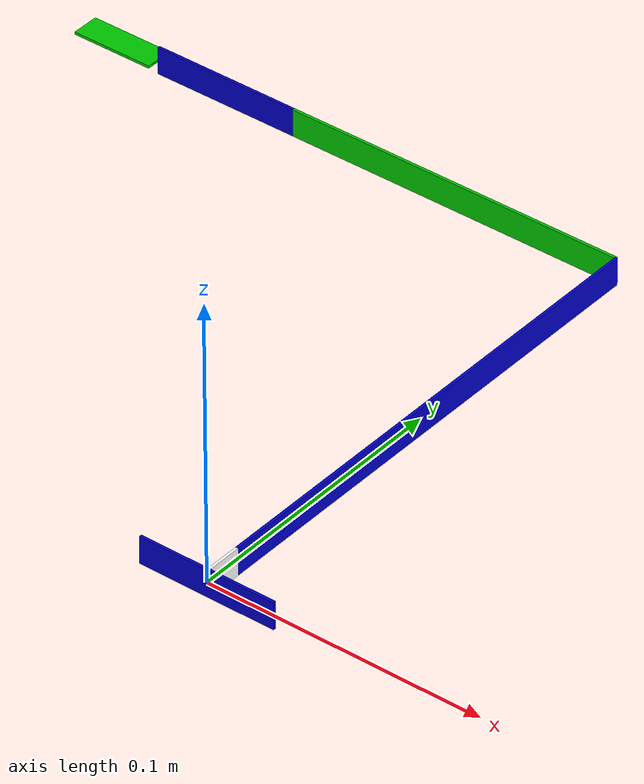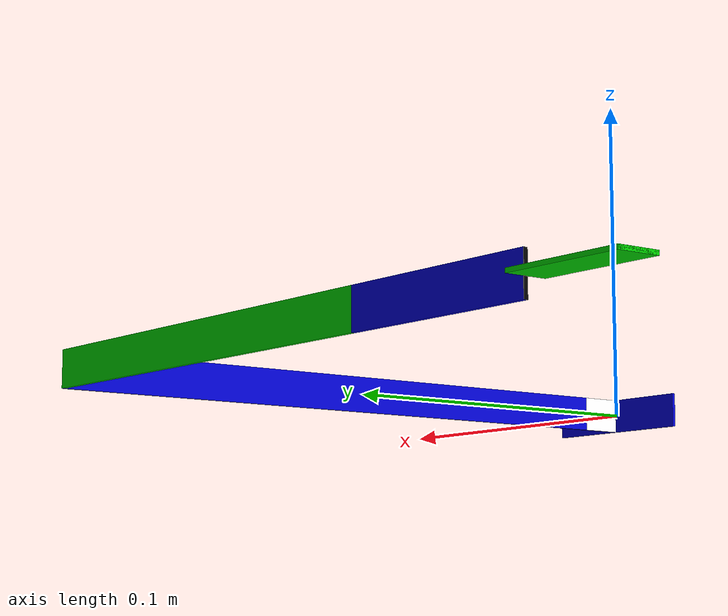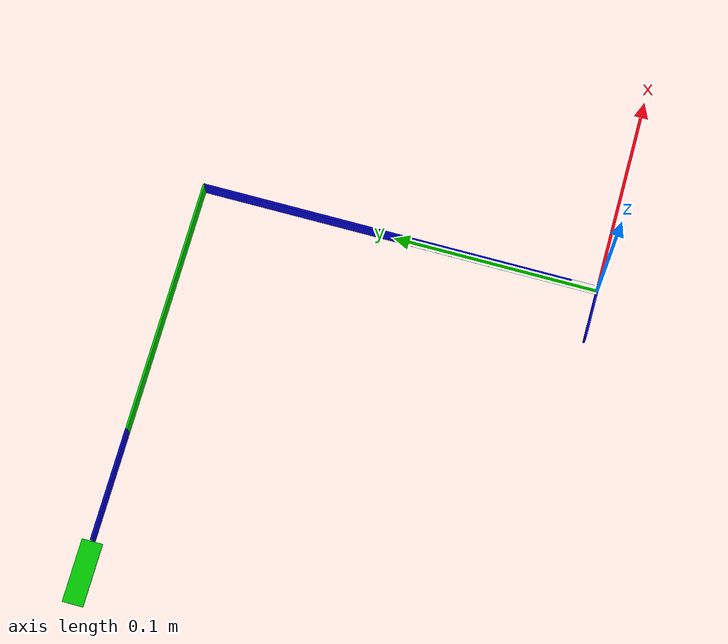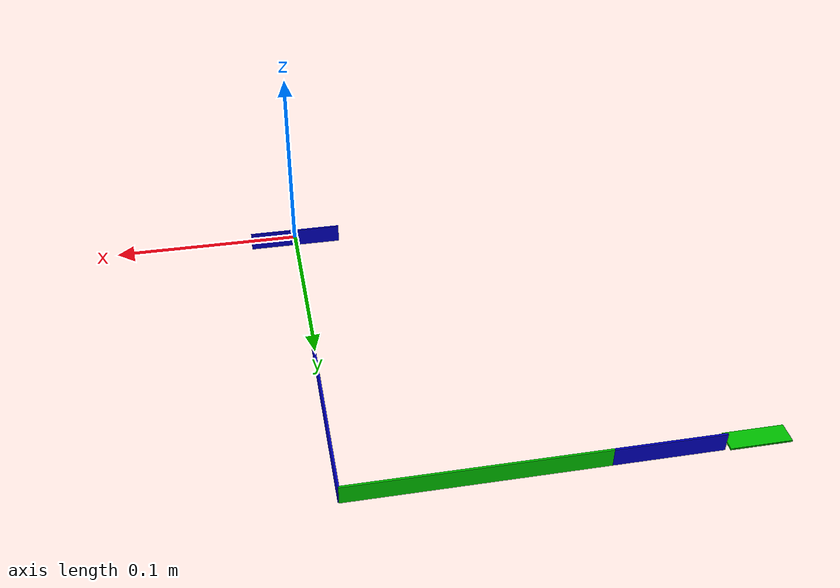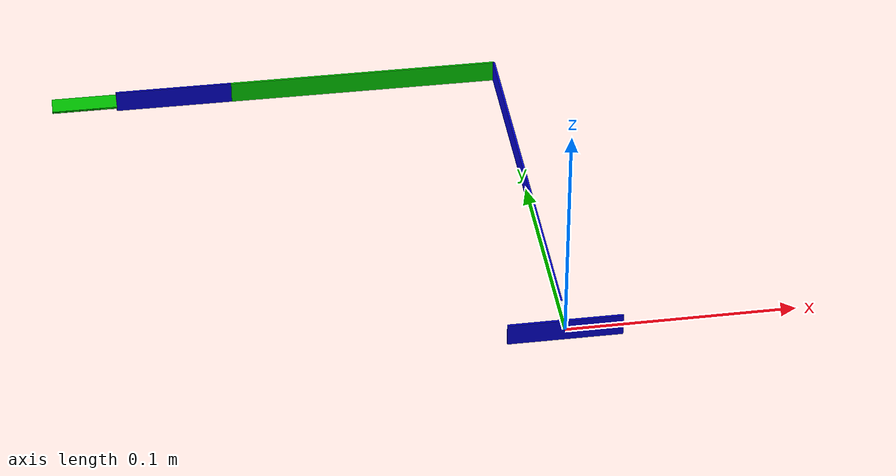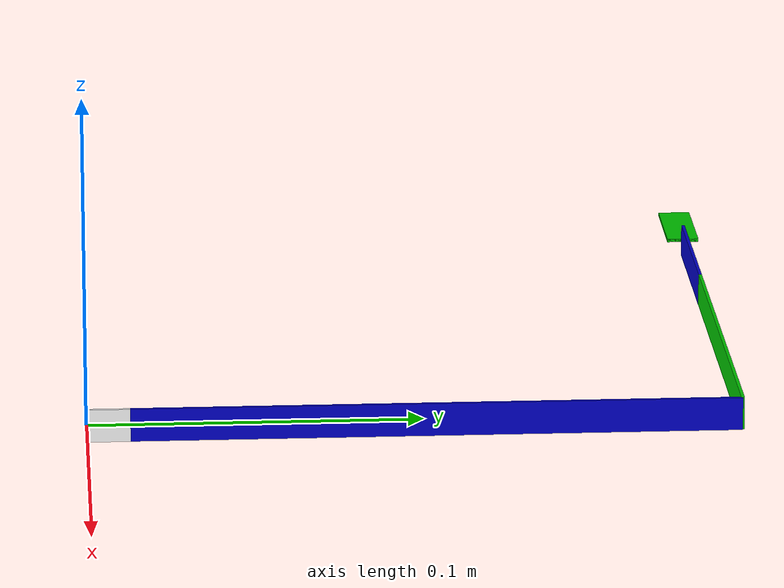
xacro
<?xml version="1.0"?>
<robot name="yannic_robot" xmlns:xacro="http://ros.org/wiki/xacro">

  <xacro:property name="width" value="0.001" />
  <xacro:property name="length" value="0.01" />
  <xacro:property name="diam" value="0.07" />

  <xacro:property name="link1_length" value="0.182" />
  <xacro:property name="link2_length" value="0.125" />
  <xacro:property name="link3_length" value="0.054" />
  <xacro:property name="dummy_length" value="0.013" />
  <xacro:property name="eff_length" value="0.03" />

   <material name="blue">
	  <color rgba="0 0 0.8 1"/>
   </material>

   <material name="transparent">
	  <color rgba="0 0 0 0"/>
   </material>

   <material name="green">
      <color rgba="0.0 0.8 0.0 1.0"/>
   </material>

   <material name="white">
	<color rgba="1 1 1 1"/>
   </material>

 <xacro:macro name="default_inertial" params="mass">
    <inertial>
      <mass value="${mass}" />
      <inertia ixx="1.0" ixy="0.0" ixz="0.0" iyy="1.0" iyz="0.0" izz="1.0" />
    </inertial>
  </xacro:macro>

 <link name="base_link">
    <visual>
      <geometry>
        <box size="0.05 ${width}  ${length}"/>
      </geometry>
      <material name="blue"/>
    </visual>
    <collision>
      <geometry>
        <box size="0.05 ${width}  ${length}"/>
      </geometry>
    </collision>
  </link>

   <joint name="rotate_base" type="revolute">
     <axis xyz="1 0 0"/>
     <limit effort="1000.0" lower="-1.57" upper="1.57" velocity="0.5"/>
     <origin rpy="0 0 1.57" xyz="${width/2} 0 0"/>
     <parent link="base_link"/>
     <child link="dummy"/>
   </joint>

   <link name="dummy">
   <visual>
      <geometry>
         <box size="${dummy_length} ${width}  ${length}"/>
      </geometry>
      <material name="white"/>
      <origin rpy="0 0 0" xyz="${dummy_length/2} 0 0.0"/>
    </visual>
    <collision>
      <geometry>
        <box size="${dummy_length} ${width}  ${length}"/>
      </geometry>
    </collision>
    <xacro:default_inertial mass="10"/>
   </link>

   <joint name="joint1" type="revolute">
     <axis xyz="0 0 1"/>
     <limit effort="1000.0" lower="-${pi/4}" upper="${pi/4}" velocity="0.5"/>
     <origin rpy="0 0 0" xyz="${dummy_length} 0 0"/>
     <parent link="dummy"/>
     <child link="link1"/>
   </joint>

   <link name="link1">
   <visual>
      <geometry>
         <box size="${link1_length} ${width}  ${length}"/>
      </geometry>
      <material name="blue"/>
      <origin rpy="0 0 0" xyz="${link1_length/2} 0 0.0"/>
    </visual>
   <collision>
      <geometry>
        <box size="${link1_length} ${width}  ${length}"/>
      </geometry>
    </collision>
   <xacro:default_inertial mass="10"/>
   </link>

   <joint name="joint2" type="revolute">
     <axis xyz="0 0 1"/>
     <limit effort="1000.0" lower="${pi/4}" upper="${3*pi/4}" velocity="0.5"/>
     <origin rpy="0 0 0" xyz="${link1_length} 0 0"/>
     <parent link="link1"/>
     <child link="link2"/>
   </joint>

   <link name="link2">
   <visual>
      <geometry>
         <box size="${link2_length} ${width}  ${length}"/>
      </geometry>
      <material name="green"/>
      <origin rpy="0 0 0" xyz="${link2_length/2} 0 0.0"/>
    </visual>
   <collision>
      <geometry>
        <box size="${link2_length} ${width}  ${length}"/>
      </geometry>
    </collision>
   <xacro:default_inertial mass="10"/>
   </link>

   <joint name="joint3" type="revolute">
     <axis xyz="0 0 1"/>
     <limit effort="1000.0" lower="-${pi/2}" upper="${pi/2}" velocity="0.5"/>
     <origin rpy="0 0 0" xyz="${link2_length} 0 0"/>
     <parent link="link2"/>
     <child link="link3"/>
   </joint>

   <link name="link3">
   <visual>
      <geometry>
         <box size="${link3_length} ${width}  ${length}"/>
      </geometry>
      <material name="blue"/>
      <origin rpy="0 0 0" xyz="${link3_length/2} 0 0.0"/>
    </visual>
	    <collision>
      <geometry>
        <box size="${link3_length} ${width}  ${length}"/>
      </geometry>
    </collision>
   <xacro:default_inertial mass="10"/>
   </link>

   <joint name="gripper_joint" type="prismatic">
     <axis xyz="0 1 0"/>
     <limit effort="1000.0" lower="0" upper="0.03" velocity="0.5"/>
     <origin rpy="${pi/2} 0 0" xyz="${link3_length} 0 0"/>
     <parent link="link3"/>
     <child link="gripper"/>
   </joint>

   <link name="gripper">
   	<visual>
      <geometry>
         <box size="${eff_length} ${width}  ${length}"/>
      </geometry>
      <origin rpy="0 0 0" xyz="${eff_length/2} 0 0"/>
      <material name="green"/>
    </visual>
	  <collision>
      <geometry>
        <box size="${eff_length} ${width}  ${length}"/>
      </geometry>
    </collision>
    <xacro:default_inertial mass="0.5"/>
   </link>

   <joint name="left_gripper" type="prismatic">
     <axis xyz="0 1 0"/>
     <limit effort="1000.0" lower="0" upper="0.03" velocity="0.5"/>
     <origin rpy="-${pi/2} 0 0" xyz="${link3_length} 0 0"/>
     <parent link="link3"/>
     <child link="left_gripper"/>
     <mimic joint="gripper_joint" multiplier="1" offset="0" />
   </joint>

   <link name="left_gripper">
   	<visual>
      <geometry>
         <box size="${eff_length} ${width}  ${length}"/>
      </geometry>
      <origin rpy="0 0 0" xyz="${eff_length/2} 0 0"/>
      <material name="green"/>
    </visual>
	  <collision>
      <geometry>
        <box size="${eff_length} ${width}  ${length}"/>
      </geometry>
    </collision>
    <xacro:default_inertial mass="0.5"/>
   </link>

   <joint name="endeff_joint" type="fixed">
     <origin rpy="0 0 0" xyz="${link3_length} 0 0"/>
     <parent link="link3"/>
     <child link="endeff"/>
   </joint>

   <link name="endeff">
   <visual>
      <geometry>
         <box size="0.0001 ${width}  ${length}"/>
      </geometry>
      <material name="transparent"/>
      <origin rpy="0 0 0" xyz="${0.0001/2} 0 0.0"/>
    </visual>
	    <collision>
      <geometry>
        <box size="0.0001 ${width}  ${length}"/>
      </geometry>
    </collision>
   <xacro:default_inertial mass="0.01"/>
   </link>

<transmission name="trans_rotate_base">
        <type>transmission_interface/SimpleTransmission</type>
        <joint name="rotate_base">
            <hardwareInterface>hardware_interface/PositionJointInterface</hardwareInterface>
        </joint>
        <actuator name="rotate_base_motor">
            <hardwareInterface>hardware_interface/PositionJointInterface</hardwareInterface>
            <mechanicalReduction>1</mechanicalReduction>
        </actuator>
    </transmission>
    <transmission name="trans_joint1">
        <type>transmission_interface/SimpleTransmission</type>
        <joint name="joint1">
            <hardwareInterface>hardware_interface/PositionJointInterface</hardwareInterface>
        </joint>
        <actuator name="joint1_motor">
            <hardwareInterface>hardware_interface/PositionJointInterface</hardwareInterface>
            <mechanicalReduction>1</mechanicalReduction>
        </actuator>
    </transmission>
    <transmission name="trans_joint2">
        <type>transmission_interface/SimpleTransmission</type>
        <joint name="joint2">
            <hardwareInterface>hardware_interface/PositionJointInterface</hardwareInterface>
        </joint>
        <actuator name="joint2_motor">
            <hardwareInterface>hardware_interface/PositionJointInterface</hardwareInterface>
            <mechanicalReduction>1</mechanicalReduction>
        </actuator>
    </transmission>
    <transmission name="trans_joint3">
        <type>transmission_interface/SimpleTransmission</type>
        <joint name="joint3">
            <hardwareInterface>hardware_interface/PositionJointInterface</hardwareInterface>
        </joint>
        <actuator name="joint3_motor">
            <hardwareInterface>hardware_interface/PositionJointInterface</hardwareInterface>
            <mechanicalReduction>1</mechanicalReduction>
        </actuator>
    </transmission>
    <transmission name="trans_gripper_joint">
        <type>transmission_interface/SimpleTransmission</type>
        <joint name="gripper_joint">
            <hardwareInterface>hardware_interface/PositionJointInterface</hardwareInterface>
        </joint>
        <actuator name="gripper_joint_motor">
            <hardwareInterface>hardware_interface/PositionJointInterface</hardwareInterface>
            <mechanicalReduction>1</mechanicalReduction>
        </actuator>
    </transmission>
    <gazebo>
        <plugin name="gazebo_ros_control" filename="libgazebo_ros_control.so">
            <robotNamespace>/</robotNamespace>
        </plugin>
    </gazebo>

</robot>
